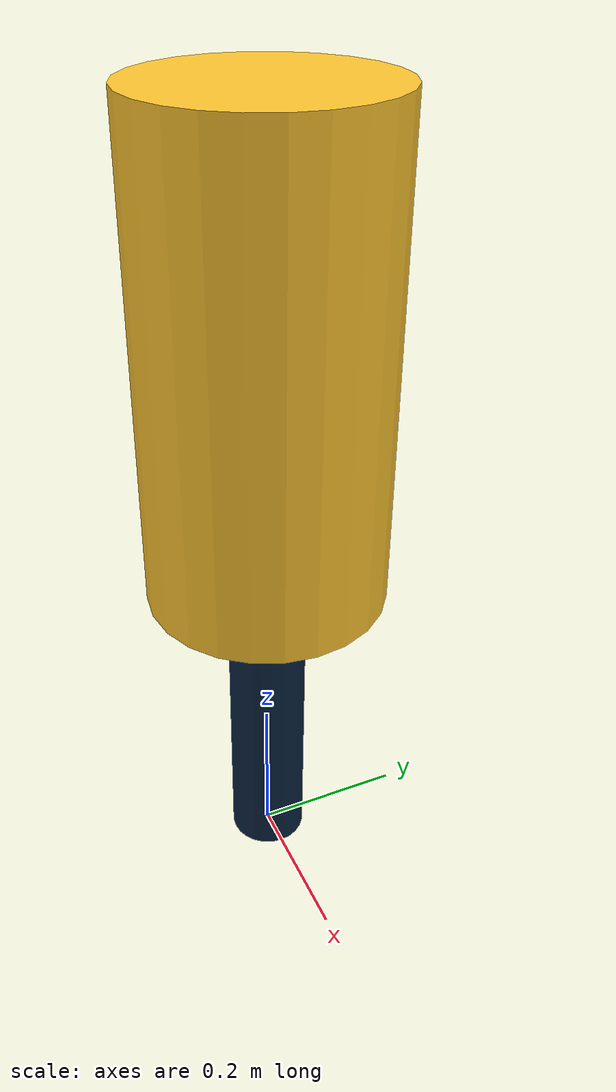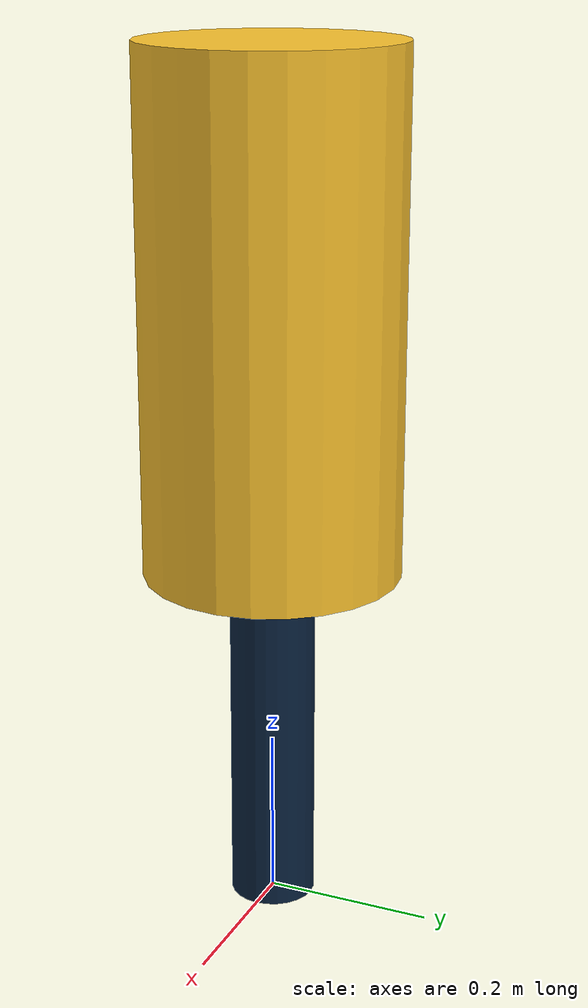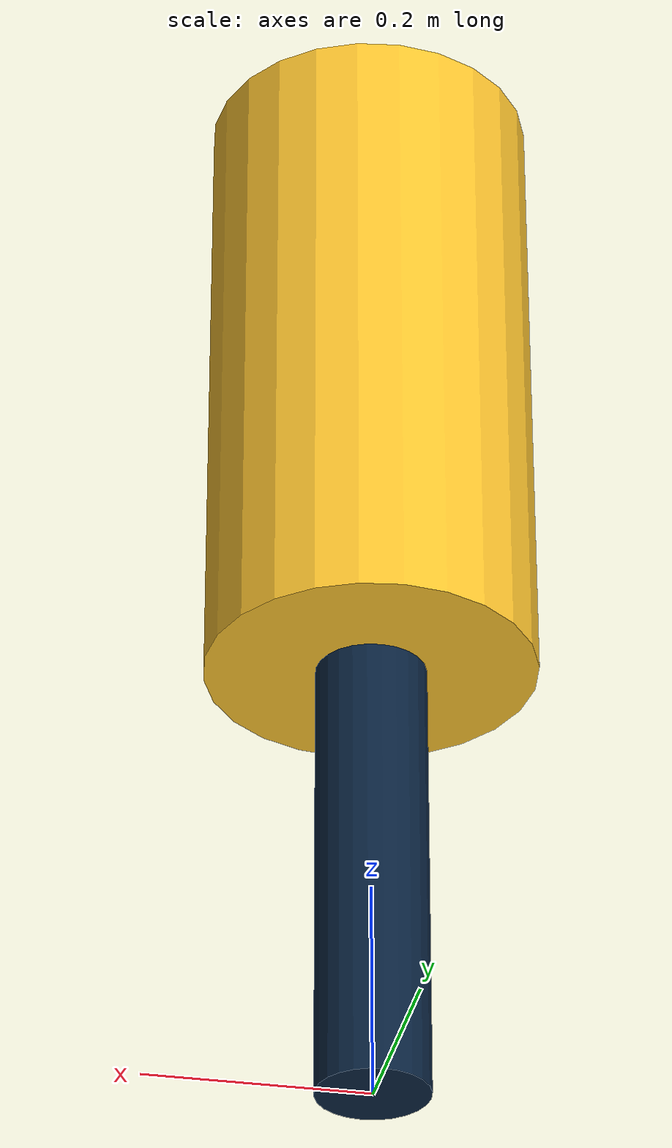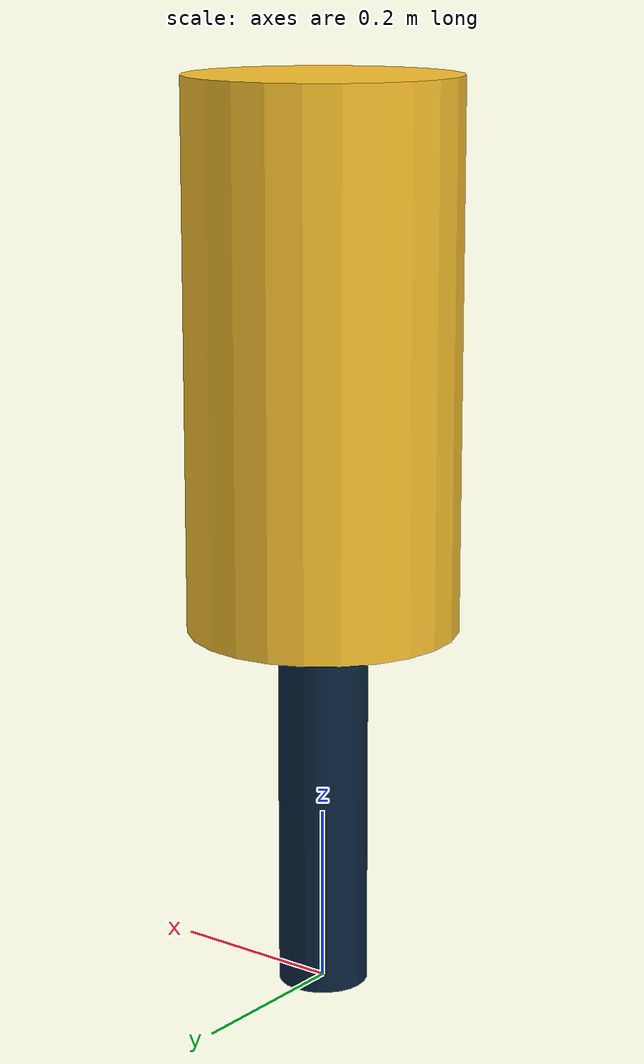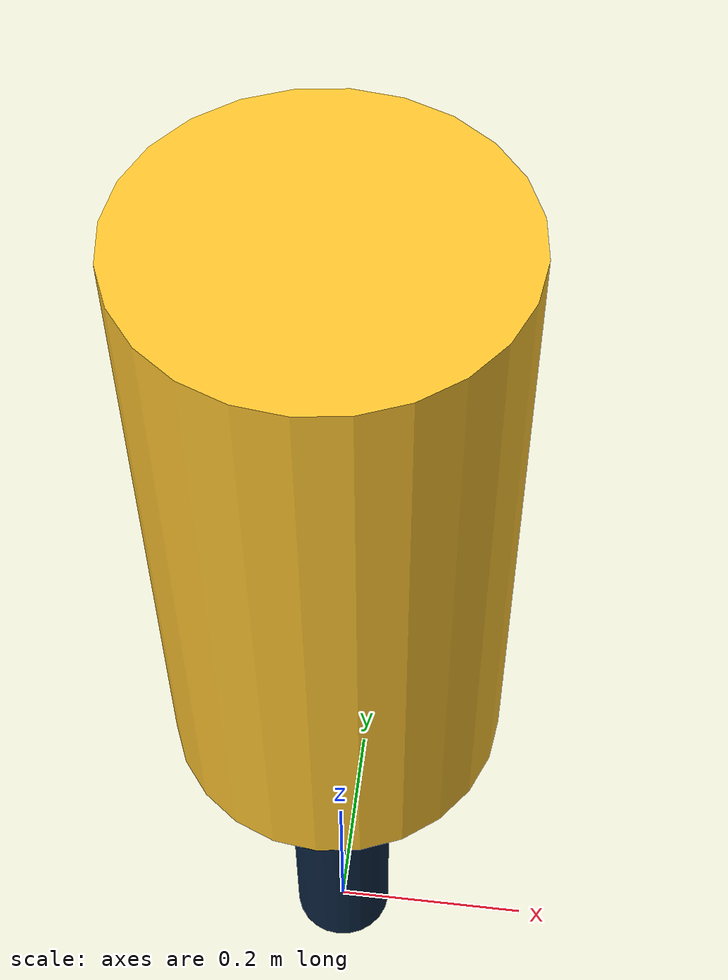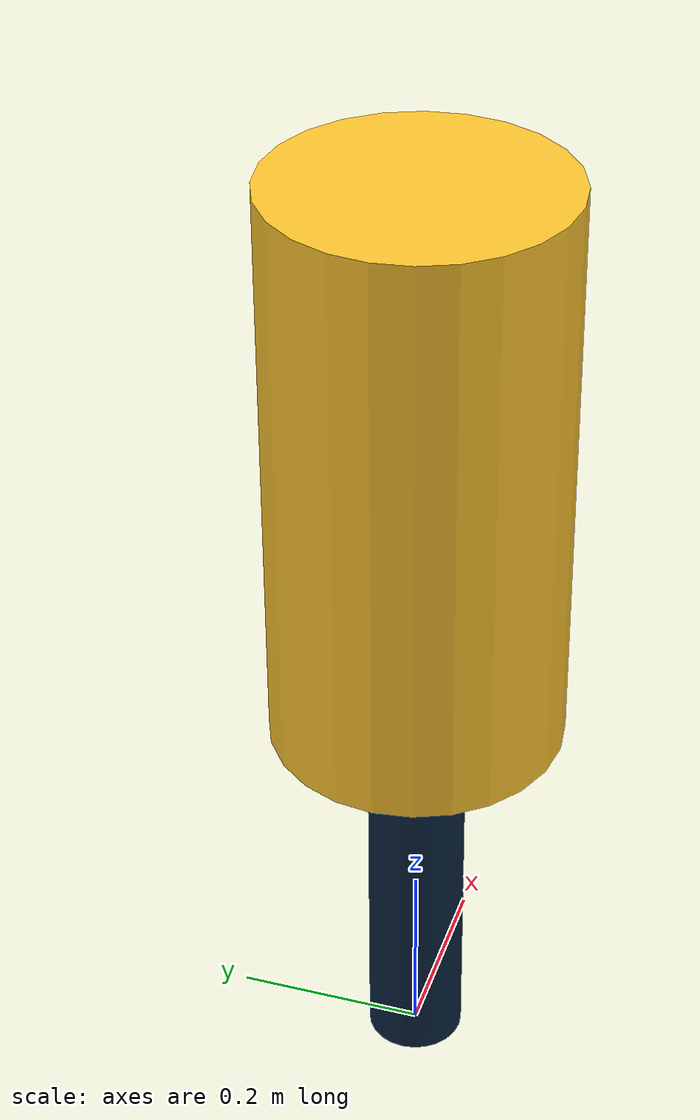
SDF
<?xml version='1.0'?>
<sdf version='1.7'>
  <model name='fiduciary'>
    <pose>0 0 0 0 0 0</pose>
    <link name='fiduciary'>
      <collision name='fiduciary_collision'>
        <geometry>
          <cylinder>
            <length>0.6096</length>
            <radius>0.1524</radius>
          </cylinder>
        </geometry>
      </collision>
      <visual name='fiduciary_visual'>
        <pose>0 0 0.7239 0 0 0</pose>
        <geometry>
          <cylinder>
            <length>0.6096</length>
            <radius>0.1524</radius>
          </cylinder>
        </geometry>
        <material>
          <ambient>1 0.776 0.184 1</ambient>
          <diffuse>1 0.776 0.184 1</diffuse>
          <specular>1 1 1 1</specular>
        </material>
        <meta>
          <layer>0</layer>
        </meta>
      </visual>
    </link>
    <link name='fiduciary_stand'>
      <collision name='fiduciary_stand_collision'>
        <geometry>
          <cylinder>
            <length>0.4572</length>
            <radius>0.0508</radius>
          </cylinder>
        </geometry>
      </collision>
      <visual name='fiduciary_stand_visual'>
        <pose>0 0 0.2286 0 0 0</pose>
        <geometry>
          <cylinder>
            <length>0.4572</length>
            <radius>0.0508</radius>
          </cylinder>
        </geometry>
        <material>
          <ambient>0.039 0.137 0.247 1</ambient>
          <diffuse>0.039 0.137 0.247 1</diffuse>
          <specular>1 1 1 1</specular>
        </material>
        <meta>
          <layer>0</layer>
        </meta>
      </visual>
    </link>
    <static>1</static>
  </model>
</sdf>
